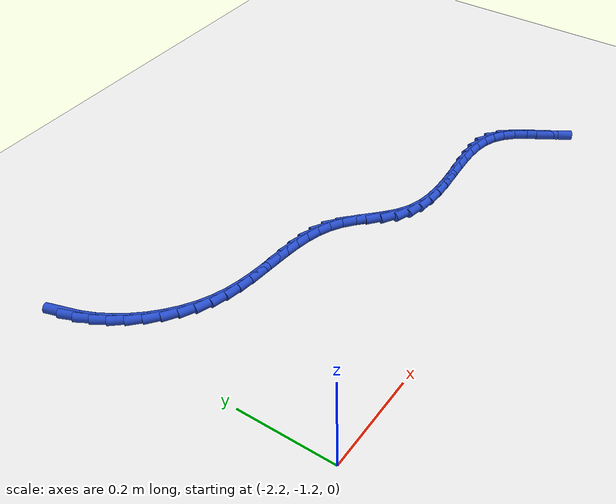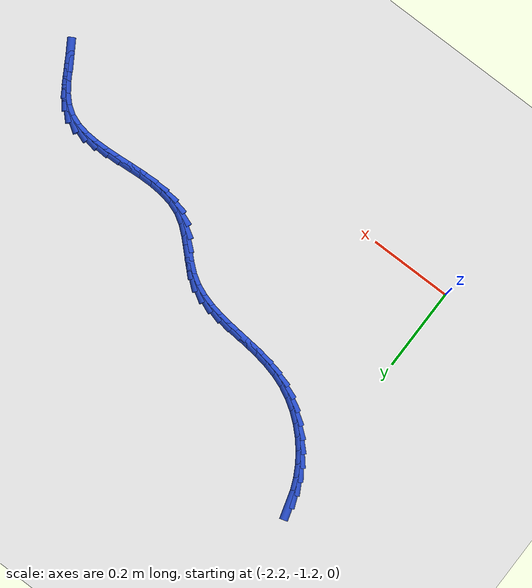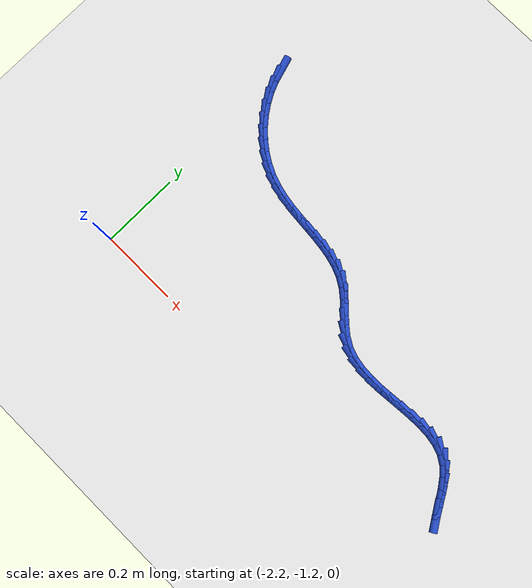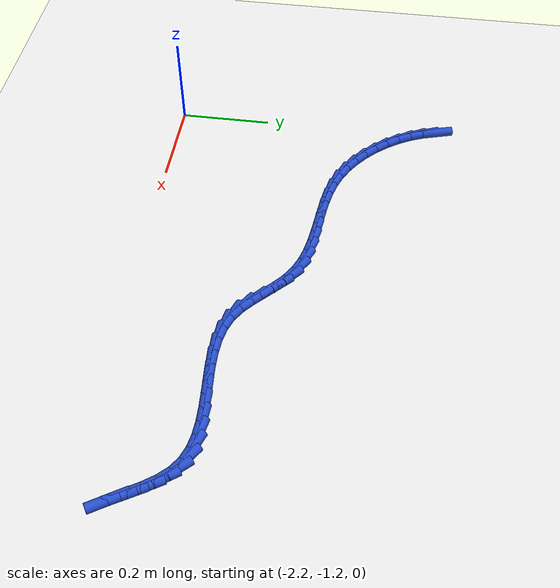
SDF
<sdf version="1.6">
 <world name="default">
  <model name="ground_plane">
   <static>1</static>
   <link name="link">
    <collision name="collision">
     <geometry><plane><normal>0 0 1</normal><size>100 100</size></plane></geometry>
     <surface><friction><ode><mu>100</mu><mu2>50</mu2></ode></friction></surface>
    </collision>
    <visual name="visual">
     <cast_shadows>0</cast_shadows>
     <geometry><plane><normal>0 0 1</normal><size>100 100</size></plane></geometry>
     <material>
      <script><uri>file://media/materials/scripts/gazebo.material</uri><name>Gazebo/WhiteGlow</name></script>
     </material>
    </visual>
   </link>
  </model>
  <model name="line">
   <link name="link_145">
    <pose>-2.2064180208970625 -0.6101239416732166 0.01 0 1.57 -1.2802569556724088</pose>
    <collision name="collision">
     <geometry><cylinder><radius>0.01</radius><length>0.08</length></cylinder></geometry>
    </collision>
    <visual name="visual">
     <material>
      <script><name>Gazebo/Blue</name><uri>file://media/materials/scripts/gazebo.material</uri></script>
     </material>
     <geometry><cylinder><radius>0.01</radius><length>0.08</length></cylinder></geometry>
    </visual>
   </link>
   <link name="link_146">
    <pose>-2.197991829610684 -0.6383051567217362 0.01 0 1.57 -1.165617063915328</pose>
    <collision name="collision">
     <geometry><cylinder><radius>0.01</radius><length>0.08</length></cylinder></geometry>
    </collision>
    <visual name="visual">
     <material>
      <script><name>Gazebo/Blue</name><uri>file://media/materials/scripts/gazebo.material</uri></script>
     </material>
     <geometry><cylinder><radius>0.01</radius><length>0.08</length></cylinder></geometry>
    </visual>
   </link>
   <link name="link_147">
    <pose>-2.186157181037932 -0.6658974262325155 0.01 0 1.57 -1.0594124441724633</pose>
    <collision name="collision">
     <geometry><cylinder><radius>0.01</radius><length>0.08</length></cylinder></geometry>
    </collision>
    <visual name="visual">
     <material>
      <script><name>Gazebo/Blue</name><uri>file://media/materials/scripts/gazebo.material</uri></script>
     </material>
     <geometry><cylinder><radius>0.01</radius><length>0.08</length></cylinder></geometry>
    </visual>
   </link>
   <link name="link_148">
    <pose>-2.1712005021368364 -0.692549763951344 0.01 0 1.57 -0.9590314246949008</pose>
    <collision name="collision">
     <geometry><cylinder><radius>0.01</radius><length>0.08</length></cylinder></geometry>
    </collision>
    <visual name="visual">
     <material>
      <script><name>Gazebo/Blue</name><uri>file://media/materials/scripts/gazebo.material</uri></script>
     </material>
     <geometry><cylinder><radius>0.01</radius><length>0.08</length></cylinder></geometry>
    </visual>
   </link>
   <link name="link_149">
    <pose>-2.153408219865427 -0.717911183624012 0.01 0 1.57 -0.8619162460370609</pose>
    <collision name="collision">
     <geometry><cylinder><radius>0.01</radius><length>0.08</length></cylinder></geometry>
    </collision>
    <visual name="visual">
     <material>
      <script><name>Gazebo/Blue</name><uri>file://media/materials/scripts/gazebo.material</uri></script>
     </material>
     <geometry><cylinder><radius>0.01</radius><length>0.08</length></cylinder></geometry>
    </visual>
   </link>
   <link name="link_150">
    <pose>-2.1330667611817318 -0.7416306989963083 0.01 0 1.57 -0.7656045197916268</pose>
    <collision name="collision">
     <geometry><cylinder><radius>0.01</radius><length>0.08</length></cylinder></geometry>
    </collision>
    <visual name="visual">
     <material>
      <script><name>Gazebo/Blue</name><uri>file://media/materials/scripts/gazebo.material</uri></script>
     </material>
     <geometry><cylinder><radius>0.01</radius><length>0.08</length></cylinder></geometry>
    </visual>
   </link>
   <link name="link_151">
    <pose>-2.1104625530437824 -0.7633573238140234 0.01 0 1.57 -0.6677143808292915</pose>
    <collision name="collision">
     <geometry><cylinder><radius>0.01</radius><length>0.08</length></cylinder></geometry>
    </collision>
    <visual name="visual">
     <material>
      <script><name>Gazebo/Blue</name><uri>file://media/materials/scripts/gazebo.material</uri></script>
     </material>
     <geometry><cylinder><radius>0.01</radius><length>0.08</length></cylinder></geometry>
    </visual>
   </link>
   <link name="link_152">
    <pose>-2.0858820224096077 -0.7827400718229469 0.01 0 1.57 -0.5659252331335254</pose>
    <collision name="collision">
     <geometry><cylinder><radius>0.01</radius><length>0.08</length></cylinder></geometry>
    </collision>
    <visual name="visual">
     <material>
      <script><name>Gazebo/Blue</name><uri>file://media/materials/scripts/gazebo.material</uri></script>
     </material>
     <geometry><cylinder><radius>0.01</radius><length>0.08</length></cylinder></geometry>
    </visual>
   </link>
   <link name="link_153">
    <pose>-2.0596115962372377 -0.7994279567688687 0.01 0 1.57 -0.4579972200378926</pose>
    <collision name="collision">
     <geometry><cylinder><radius>0.01</radius><length>0.08</length></cylinder></geometry>
    </collision>
    <visual name="visual">
     <material>
      <script><name>Gazebo/Blue</name><uri>file://media/materials/scripts/gazebo.material</uri></script>
     </material>
     <geometry><cylinder><radius>0.01</radius><length>0.08</length></cylinder></geometry>
    </visual>
   </link>
   <link name="link_154">
    <pose>-2.031937701484702 -0.8130699923975785 0.01 0 1.57 -0.343311181202577</pose>
    <collision name="collision">
     <geometry><cylinder><radius>0.01</radius><length>0.08</length></cylinder></geometry>
    </collision>
    <visual name="visual">
     <material>
      <script><name>Gazebo/Blue</name><uri>file://media/materials/scripts/gazebo.material</uri></script>
     </material>
     <geometry><cylinder><radius>0.01</radius><length>0.08</length></cylinder></geometry>
    </visual>
   </link>
   <link name="link_155">
    <pose>-2.0031467942498544 -0.823361784983896 0.01 0 1.57 -0.24036356453418178</pose>
    <collision name="collision">
     <geometry><cylinder><radius>0.01</radius><length>0.08</length></cylinder></geometry>
    </collision>
    <visual name="visual">
     <material>
      <script><name>Gazebo/Blue</name><uri>file://media/materials/scripts/gazebo.material</uri></script>
     </material>
     <geometry><cylinder><radius>0.01</radius><length>0.08</length></cylinder></geometry>
    </visual>
   </link>
   <link name="link_156">
    <pose>-1.9735257202855074 -0.8306219716488605 0.01 0 1.57 -0.16399307980883612</pose>
    <collision name="collision">
     <geometry><cylinder><radius>0.01</radius><length>0.08</length></cylinder></geometry>
    </collision>
    <visual name="visual">
     <material>
      <script><name>Gazebo/Blue</name><uri>file://media/materials/scripts/gazebo.material</uri></script>
     </material>
     <geometry><cylinder><radius>0.01</radius><length>0.08</length></cylinder></geometry>
    </visual>
   </link>
   <link name="link_157">
    <pose>-1.9433616032278827 -0.835613505526968 0.01 0 1.57 -0.11440277027582894</pose>
    <collision name="collision">
     <geometry><cylinder><radius>0.01</radius><length>0.08</length></cylinder></geometry>
    </collision>
    <visual name="visual">
     <material>
      <script><name>Gazebo/Blue</name><uri>file://media/materials/scripts/gazebo.material</uri></script>
     </material>
     <geometry><cylinder><radius>0.01</radius><length>0.08</length></cylinder></geometry>
    </visual>
   </link>
   <link name="link_158">
    <pose>-1.9129415726947725 -0.8391089038645558 0.01 0 1.57 -0.0909588531133777</pose>
    <collision name="collision">
     <geometry><cylinder><radius>0.01</radius><length>0.08</length></cylinder></geometry>
    </collision>
    <visual name="visual">
     <material>
      <script><name>Gazebo/Blue</name><uri>file://media/materials/scripts/gazebo.material</uri></script>
     </material>
     <geometry><cylinder><radius>0.01</radius><length>0.08</length></cylinder></geometry>
    </visual>
   </link>
   <link name="link_159">
    <pose>-1.8825527583039718 -0.8418806839079616 0.01 0 1.57 -0.09352862115327032</pose>
    <collision name="collision">
     <geometry><cylinder><radius>0.01</radius><length>0.08</length></cylinder></geometry>
    </collision>
    <visual name="visual">
     <material>
      <script><name>Gazebo/Blue</name><uri>file://media/materials/scripts/gazebo.material</uri></script>
     </material>
     <geometry><cylinder><radius>0.01</radius><length>0.08</length></cylinder></geometry>
    </visual>
   </link>
   <link name="link_160">
    <pose>-1.852482289673274 -0.8447013629035233 0.01 0 1.57 -0.12298371824514348</pose>
    <collision name="collision">
     <geometry><cylinder><radius>0.01</radius><length>0.08</length></cylinder></geometry>
    </collision>
    <visual name="visual">
     <material>
      <script><name>Gazebo/Blue</name><uri>file://media/materials/scripts/gazebo.material</uri></script>
     </material>
     <geometry><cylinder><radius>0.01</radius><length>0.08</length></cylinder></geometry>
    </visual>
   </link>
   <link name="link_161">
    <pose>-1.8230172964204723 -0.8483434580975782 0.01 0 1.57 -0.181243839254487</pose>
    <collision name="collision">
     <geometry><cylinder><radius>0.01</radius><length>0.08</length></cylinder></geometry>
    </collision>
    <visual name="visual">
     <material>
      <script><name>Gazebo/Blue</name><uri>file://media/materials/scripts/gazebo.material</uri></script>
     </material>
     <geometry><cylinder><radius>0.01</radius><length>0.08</length></cylinder></geometry>
    </visual>
   </link>
   <link name="link_162">
    <pose>-1.794444908163361 -0.8535794867364642 0.01 0 1.57 -0.2707234560495355</pose>
    <collision name="collision">
     <geometry><cylinder><radius>0.01</radius><length>0.08</length></cylinder></geometry>
    </collision>
    <visual name="visual">
     <material>
      <script><name>Gazebo/Blue</name><uri>file://media/materials/scripts/gazebo.material</uri></script>
     </material>
     <geometry><cylinder><radius>0.01</radius><length>0.08</length></cylinder></geometry>
    </visual>
   </link>
   <link name="link_163">
    <pose>-1.7670522545197334 -0.8611819660665188 0.01 0 1.57 -0.3927857870169421</pose>
    <collision name="collision">
     <geometry><cylinder><radius>0.01</radius><length>0.08</length></cylinder></geometry>
    </collision>
    <visual name="visual">
     <material>
      <script><name>Gazebo/Blue</name><uri>file://media/materials/scripts/gazebo.material</uri></script>
     </material>
     <geometry><cylinder><radius>0.01</radius><length>0.08</length></cylinder></geometry>
    </visual>
   </link>
   <link name="link_164">
    <pose>-1.741126465107383 -0.8719234133340799 0.01 0 1.57 -0.5448883872365624</pose>
    <collision name="collision">
     <geometry><cylinder><radius>0.01</radius><length>0.08</length></cylinder></geometry>
    </collision>
    <visual name="visual">
     <material>
      <script><name>Gazebo/Blue</name><uri>file://media/materials/scripts/gazebo.material</uri></script>
     </material>
     <geometry><cylinder><radius>0.01</radius><length>0.08</length></cylinder></geometry>
    </visual>
   </link>
   <link name="link_165">
    <pose>-1.716953789102981 -0.8865743288453116 0.01 0 1.57 -0.6916815712434169</pose>
    <collision name="collision">
     <geometry><cylinder><radius>0.01</radius><length>0.08</length></cylinder></geometry>
    </collision>
    <visual name="visual">
     <material>
      <script><name>Gazebo/Blue</name><uri>file://media/materials/scripts/gazebo.material</uri></script>
     </material>
     <geometry><cylinder><radius>0.01</radius><length>0.08</length></cylinder></geometry>
    </visual>
   </link>
   <link name="link_166">
    <pose>-1.6944996022710737 -0.9051701467459232 0.01 0 1.57 -0.7661064039715687</pose>
    <collision name="collision">
     <geometry><cylinder><radius>0.01</radius><length>0.08</length></cylinder></geometry>
    </collision>
    <visual name="visual">
     <material>
      <script><name>Gazebo/Blue</name><uri>file://media/materials/scripts/gazebo.material</uri></script>
     </material>
     <geometry><cylinder><radius>0.01</radius><length>0.08</length></cylinder></geometry>
    </visual>
   </link>
   <link name="link_167">
    <pose>-1.6729324234444671 -0.9259208381076744 0.01 0 1.57 -0.7666515511249561</pose>
    <collision name="collision">
     <geometry><cylinder><radius>0.01</radius><length>0.08</length></cylinder></geometry>
    </collision>
    <visual name="visual">
     <material>
      <script><name>Gazebo/Blue</name><uri>file://media/materials/scripts/gazebo.material</uri></script>
     </material>
     <geometry><cylinder><radius>0.01</radius><length>0.08</length></cylinder></geometry>
    </visual>
   </link>
   <link name="link_168">
    <pose>-1.6512991759297315 -0.9467578194283938 0.01 0 1.57 -0.694156847452485</pose>
    <collision name="collision">
     <geometry><cylinder><radius>0.01</radius><length>0.08</length></cylinder></geometry>
    </collision>
    <visual name="visual">
     <material>
      <script><name>Gazebo/Blue</name><uri>file://media/materials/scripts/gazebo.material</uri></script>
     </material>
     <geometry><cylinder><radius>0.01</radius><length>0.08</length></cylinder></geometry>
    </visual>
   </link>
   <link name="link_169">
    <pose>-1.6286467830334337 -0.9656125072059089 0.01 0 1.57 -0.5416328840992276</pose>
    <collision name="collision">
     <geometry><cylinder><radius>0.01</radius><length>0.08</length></cylinder></geometry>
    </collision>
    <visual name="visual">
     <material>
      <script><name>Gazebo/Blue</name><uri>file://media/materials/scripts/gazebo.material</uri></script>
     </material>
     <geometry><cylinder><radius>0.01</radius><length>0.08</length></cylinder></geometry>
    </visual>
   </link>
   <link name="link_170">
    <pose>-1.6040265026758738 -0.9804253334767531 0.01 0 1.57 -0.3437223364129652</pose>
    <collision name="collision">
     <geometry><cylinder><radius>0.01</radius><length>0.08</length></cylinder></geometry>
    </collision>
    <visual name="visual">
     <material>
      <script><name>Gazebo/Blue</name><uri>file://media/materials/scripts/gazebo.material</uri></script>
     </material>
     <geometry><cylinder><radius>0.01</radius><length>0.08</length></cylinder></geometry>
    </visual>
   </link>
   <link name="link_171">
    <pose>-1.576959234372873 -0.9901135351891555 0.01 0 1.57 -0.18074623590431824</pose>
    <collision name="collision">
     <geometry><cylinder><radius>0.01</radius><length>0.08</length></cylinder></geometry>
    </collision>
    <visual name="visual">
     <material>
      <script><name>Gazebo/Blue</name><uri>file://media/materials/scripts/gazebo.material</uri></script>
     </material>
     <geometry><cylinder><radius>0.01</radius><length>0.08</length></cylinder></geometry>
    </visual>
   </link>
   <link name="link_172">
    <pose>-1.5478498864796126 -0.9954329943017096 0.01 0 1.57 -0.06223560819027974</pose>
    <collision name="collision">
     <geometry><cylinder><radius>0.01</radius><length>0.08</length></cylinder></geometry>
    </collision>
    <visual name="visual">
     <material>
      <script><name>Gazebo/Blue</name><uri>file://media/materials/scripts/gazebo.material</uri></script>
     </material>
     <geometry><cylinder><radius>0.01</radius><length>0.08</length></cylinder></geometry>
    </visual>
   </link>
   <link name="link_173">
    <pose>-1.5172011188197032 -0.997342905502115 0.01 0 1.57 0.017054777536471367</pose>
    <collision name="collision">
     <geometry><cylinder><radius>0.01</radius><length>0.08</length></cylinder></geometry>
    </collision>
    <visual name="visual">
     <material>
      <script><name>Gazebo/Blue</name><uri>file://media/materials/scripts/gazebo.material</uri></script>
     </material>
     <geometry><cylinder><radius>0.01</radius><length>0.08</length></cylinder></geometry>
    </visual>
   </link>
   <link name="link_174">
    <pose>-1.4855155912167544 -0.9968024634780698 0.01 0 1.57 0.0629713819758724</pose>
    <collision name="collision">
     <geometry><cylinder><radius>0.01</radius><length>0.08</length></cylinder></geometry>
    </collision>
    <visual name="visual">
     <material>
      <script><name>Gazebo/Blue</name><uri>file://media/materials/scripts/gazebo.material</uri></script>
     </material>
     <geometry><cylinder><radius>0.01</radius><length>0.08</length></cylinder></geometry>
    </visual>
   </link>
   <link name="link_175">
    <pose>-1.4532959634943765 -0.9947708629172728 0.01 0 1.57 0.07932095957805879</pose>
    <collision name="collision">
     <geometry><cylinder><radius>0.01</radius><length>0.08</length></cylinder></geometry>
    </collision>
    <visual name="visual">
     <material>
      <script><name>Gazebo/Blue</name><uri>file://media/materials/scripts/gazebo.material</uri></script>
     </material>
     <geometry><cylinder><radius>0.01</radius><length>0.08</length></cylinder></geometry>
    </visual>
   </link>
   <link name="link_176">
    <pose>-1.4210448954761805 -0.992207298507423 0.01 0 1.57 0.06712191521539251</pose>
    <collision name="collision">
     <geometry><cylinder><radius>0.01</radius><length>0.08</length></cylinder></geometry>
    </collision>
    <visual name="visual">
     <material>
      <script><name>Gazebo/Blue</name><uri>file://media/materials/scripts/gazebo.material</uri></script>
     </material>
     <geometry><cylinder><radius>0.01</radius><length>0.08</length></cylinder></geometry>
    </visual>
   </link>
   <link name="link_177">
    <pose>-1.3892650469857757 -0.9900709649362189 0.01 0 1.57 0.024338139388783965</pose>
    <collision name="collision">
     <geometry><cylinder><radius>0.01</radius><length>0.08</length></cylinder></geometry>
    </collision>
    <visual name="visual">
     <material>
      <script><name>Gazebo/Blue</name><uri>file://media/materials/scripts/gazebo.material</uri></script>
     </material>
     <geometry><cylinder><radius>0.01</radius><length>0.08</length></cylinder></geometry>
    </visual>
   </link>
   <link name="link_178">
    <pose>-1.3584590778467722 -0.989321056891359 0.01 0 1.57 -0.0543529311253451</pose>
    <collision name="collision">
     <geometry><cylinder><radius>0.01</radius><length>0.08</length></cylinder></geometry>
    </collision>
    <visual name="visual">
     <material>
      <script><name>Gazebo/Blue</name><uri>file://media/materials/scripts/gazebo.material</uri></script>
     </material>
     <geometry><cylinder><radius>0.01</radius><length>0.08</length></cylinder></geometry>
    </visual>
   </link>
   <link name="link_179">
    <pose>-1.32912964788278 -0.9909167690605418 0.01 0 1.57 -0.17729546592239953</pose>
    <collision name="collision">
     <geometry><cylinder><radius>0.01</radius><length>0.08</length></cylinder></geometry>
    </collision>
    <visual name="visual">
     <material>
      <script><name>Gazebo/Blue</name><uri>file://media/materials/scripts/gazebo.material</uri></script>
     </material>
     <geometry><cylinder><radius>0.01</radius><length>0.08</length></cylinder></geometry>
    </visual>
   </link>
   <link name="link_180">
    <pose>-1.3017794169174102 -0.9958172961314667 0.01 0 1.57 -0.3530790703415528</pose>
    <collision name="collision">
     <geometry><cylinder><radius>0.01</radius><length>0.08</length></cylinder></geometry>
    </collision>
    <visual name="visual">
     <material>
      <script><name>Gazebo/Blue</name><uri>file://media/materials/scripts/gazebo.material</uri></script>
     </material>
     <geometry><cylinder><radius>0.01</radius><length>0.08</length></cylinder></geometry>
    </visual>
   </link>
   <link name="link_181">
    <pose>-1.2769110447742726 -1.004981832791832 0.01 0 1.57 -0.5807190018410582</pose>
    <collision name="collision">
     <geometry><cylinder><radius>0.01</radius><length>0.08</length></cylinder></geometry>
    </collision>
    <visual name="visual">
     <material>
      <script><name>Gazebo/Blue</name><uri>file://media/materials/scripts/gazebo.material</uri></script>
     </material>
     <geometry><cylinder><radius>0.01</radius><length>0.08</length></cylinder></geometry>
    </visual>
   </link>
   <link name="link_182">
    <pose>-1.2550152912170622 -1.0193497510321239 0.01 0 1.57 -0.800044645465639</pose>
    <collision name="collision">
     <geometry><cylinder><radius>0.01</radius><length>0.08</length></cylinder></geometry>
    </collision>
    <visual name="visual">
     <material>
      <script><name>Gazebo/Blue</name><uri>file://media/materials/scripts/gazebo.material</uri></script>
     </material>
     <geometry><cylinder><radius>0.01</radius><length>0.08</length></cylinder></geometry>
    </visual>
   </link>
   <link name="link_183">
    <pose>-1.2360151938809032 -1.0389147314819134 0.01 0 1.57 -0.9432007374338564</pose>
    <collision name="collision">
     <geometry><cylinder><radius>0.01</radius><length>0.08</length></cylinder></geometry>
    </collision>
    <visual name="visual">
     <material>
      <script><name>Gazebo/Blue</name><uri>file://media/materials/scripts/gazebo.material</uri></script>
     </material>
     <geometry><cylinder><radius>0.01</radius><length>0.08</length></cylinder></geometry>
    </visual>
   </link>
   <link name="link_184">
    <pose>-1.219028979362776 -1.0623298291237582 0.01 0 1.57 -1.0183492924979205</pose>
    <collision name="collision">
     <geometry><cylinder><radius>0.01</radius><length>0.08</length></cylinder></geometry>
    </collision>
    <visual name="visual">
     <material>
      <script><name>Gazebo/Blue</name><uri>file://media/materials/scripts/gazebo.material</uri></script>
     </material>
     <geometry><cylinder><radius>0.01</radius><length>0.08</length></cylinder></geometry>
    </visual>
   </link>
   <link name="link_185">
    <pose>-1.2031137387244422 -1.0881462615366844 0.01 0 1.57 -1.0379430562835195</pose>
    <collision name="collision">
     <geometry><cylinder><radius>0.01</radius><length>0.08</length></cylinder></geometry>
    </collision>
    <visual name="visual">
     <material>
      <script><name>Gazebo/Blue</name><uri>file://media/materials/scripts/gazebo.material</uri></script>
     </material>
     <geometry><cylinder><radius>0.01</radius><length>0.08</length></cylinder></geometry>
    </visual>
   </link>
   <link name="link_186">
    <pose>-1.1873265630276637 -1.1149152462997176 0.01 0 1.57 -1.0072433581004265</pose>
    <collision name="collision">
     <geometry><cylinder><radius>0.01</radius><length>0.08</length></cylinder></geometry>
    </collision>
    <visual name="visual">
     <material>
      <script><name>Gazebo/Blue</name><uri>file://media/materials/scripts/gazebo.material</uri></script>
     </material>
     <geometry><cylinder><radius>0.01</radius><length>0.08</length></cylinder></geometry>
    </visual>
   </link>
  </model>
 </world>
</sdf>
